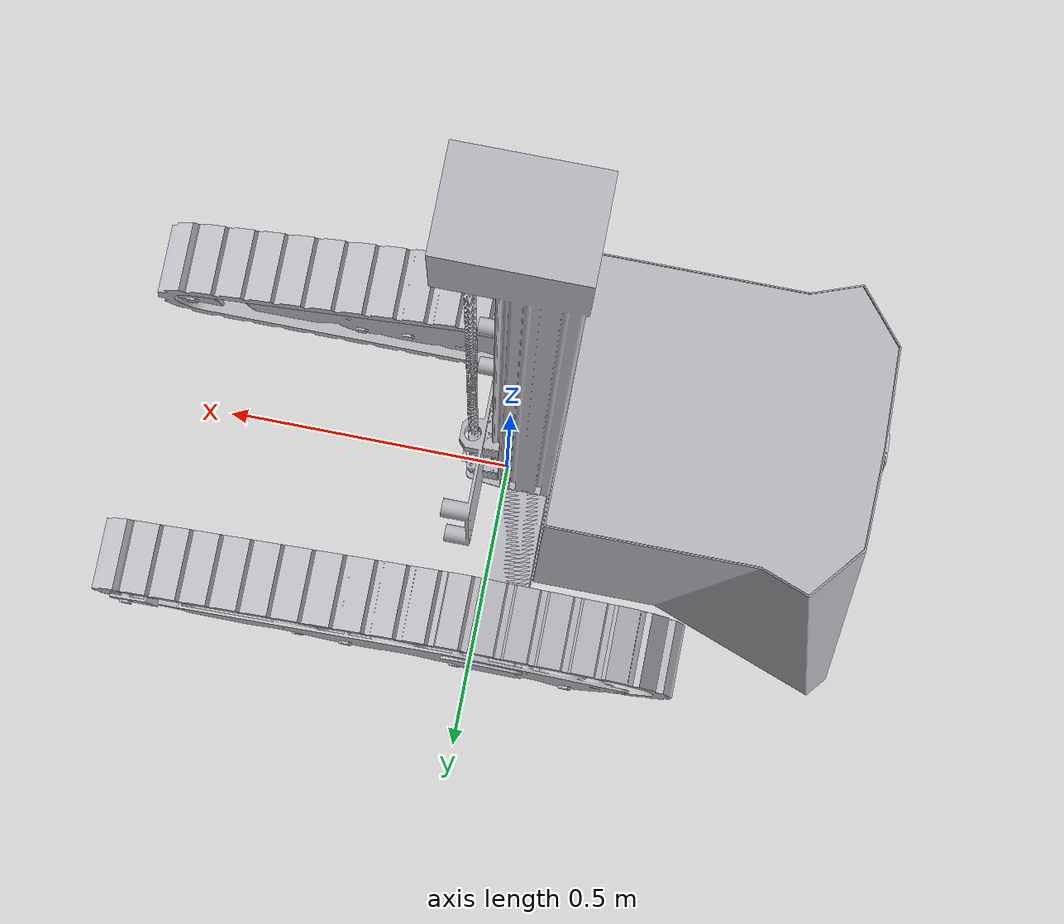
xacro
<?xml version="1.0" ?>
<robot name="mobile_robco" xmlns:xacro="http://www.ros.org/wiki/xacro" >
  <xacro:macro name="base" params="">
    <!-- Base Links -->
    <link name="base_link">
      <inertial>
        <origin xyz="-0.03896153432804354 0.005867631915463676 -0.010673279397023769" rpy="0 0 0"/>
        <mass value="0.29955790540385463"/>
        <inertia ixx="0.000104" iyy="8.5e-05" izz="0.000184" ixy="0.0" iyz="0.0" ixz="-0.0"/>
      </inertial>
      <visual>
        <origin xyz="0 0 0" rpy="0 0 0"/>
        <geometry>
          <mesh filename="package://mobile_robco_description/meshes/base/base_link.stl" scale="0.001 0.001 0.001"/>
        </geometry>
        <material name="silver"/>
      </visual>
      <collision>
        <origin xyz="0 0 0" rpy="0 0 0"/>
        <geometry>
          <mesh filename="package://mobile_robco_description/meshes/base/base_link.stl" scale="0.001 0.001 0.001"/>
        </geometry>
      </collision>
    </link>

    <link name="Komponente21_v1_1">
      <inertial>
        <origin xyz="0.8506922741874056 0.0236368074605828 0.2599444984707082" rpy="0 0 0"/>
        <mass value="7.457205844054386"/>
        <inertia ixx="0.13903" iyy="0.08284" izz="0.058701" ixy="5e-06" iyz="-0.0" ixz="-3e-06"/>
      </inertial>
      <visual>
        <origin xyz="0.812664 0.022536 -0.5244" rpy="0 0 0"/>
        <geometry>
          <mesh filename="package://mobile_robco_description/meshes/base/Komponente21_v1_1.stl" scale="0.001 0.001 0.001"/>
        </geometry>
        <material name="silver"/>
      </visual>
      <collision>
        <origin xyz="0.812664 0.022536 -0.5244" rpy="0 0 0"/>
        <geometry>
          <mesh filename="package://mobile_robco_description/meshes/base/Komponente21_v1_1.stl" scale="0.001 0.001 0.001"/>
        </geometry>
      </collision>
    </link>

    <link name="base1_1">
      <inertial>
        <origin xyz="0.9566914769760486 -3.233384710271179 -0.25954941172347595" rpy="0 0 0"/>
        <mass value="30.05835489201481"/>
        <inertia ixx="0.536547" iyy="2.250629" izz="2.586858" ixy="0.101195" iyz="-0.033579" ixz="0.196743"/>
      </inertial>
      <visual>
        <origin xyz="0.902805 -2.986735 -0.214327" rpy="0 0 0"/>
        <geometry>
          <mesh filename="package://mobile_robco_description/meshes/base/base1_1.stl" scale="0.001 0.001 0.001"/>
        </geometry>
        <material name="silver"/>
      </visual>
      <collision>
        <origin xyz="0.902805 -2.986735 -0.214327" rpy="0 0 0"/>
        <geometry>
          <mesh filename="package://mobile_robco_description/meshes/base/base1_1.stl" scale="0.001 0.001 0.001"/>
        </geometry>
      </collision>
    </link>

    <link name="base2_1">
      <inertial>
        <origin xyz="0.9515434769737495 0.9370499741022495 -0.19289541172296418" rpy="0 0 0"/>
        <mass value="30.058354892051064"/>
        <inertia ixx="0.536547" iyy="2.250629" izz="2.586858" ixy="-0.101195" iyz="0.033579" ixz="0.196743"/>
      </inertial>
      <visual>
        <origin xyz="0.897657 0.678665 -0.147673" rpy="0 0 0"/>
        <geometry>
          <mesh filename="package://mobile_robco_description/meshes/base/base2_1.stl" scale="0.001 0.001 0.001"/>
        </geometry>
        <material name="silver"/>
      </visual>
      <collision>
        <origin xyz="0.897657 0.678665 -0.147673" rpy="0 0 0"/>
        <geometry>
          <mesh filename="package://mobile_robco_description/meshes/base/base2_1.stl" scale="0.001 0.001 0.001"/>
        </geometry>
      </collision>
    </link>

    <link name="track1_2">
      <inertial>
        <origin xyz="0.3784911035024571 0.0001407824381797762 -0.036981829496462386" rpy="0 0 0"/>
        <mass value="64.38115755506752"/>
        <inertia ixx="0.932371" iyy="7.44887" izz="6.697061" ixy="-4e-06" iyz="3e-06" ixz="0.581153"/>
      </inertial>
      <visual>
        <origin xyz="0.224661 0.271632 0.004433" rpy="0 0 0"/>
        <geometry>
          <mesh filename="package://mobile_robco_description/meshes/base/track1_2.stl" scale="0.001 0.001 0.001"/>
        </geometry>
        <material name="silver"/>
      </visual>
      <collision>
        <origin xyz="0.224661 0.271632 0.004433" rpy="0 0 0"/>
        <geometry>
          <mesh filename="package://mobile_robco_description/meshes/base/track1_2.stl" scale="0.001 0.001 0.001"/>
        </geometry>
      </collision>
    </link>

    <link name="track1_1">
      <inertial>
        <origin xyz="0.3784911035024567 0.0001407824381787215 -0.03698182949646118" rpy="0 0 0"/>
        <mass value="64.38115755506752"/>
        <inertia ixx="0.932371" iyy="7.44887" izz="6.697061" ixy="-4e-06" iyz="3e-06" ixz="0.581153"/>
      </inertial>
      <visual>
        <origin xyz="0.224661 -0.283368 0.004433" rpy="0 0 0"/>
        <geometry>
          <mesh filename="package://mobile_robco_description/meshes/base/track1_1.stl" scale="0.001 0.001 0.001"/>
        </geometry>
        <material name="silver"/>
      </visual>
      <collision>
        <origin xyz="0.224661 -0.283368 0.004433" rpy="0 0 0"/>
        <geometry>
          <mesh filename="package://mobile_robco_description/meshes/base/track1_1.stl" scale="0.001 0.001 0.001"/>
        </geometry>
      </collision>
    </link>

    <link name="case_1">
      <inertial>
        <origin xyz="0.5981603934625015 -0.27455392719381355 0.27391391694938416" rpy="0 0 0"/>
        <mass value="21.33788447267496"/>
        <inertia ixx="1.560533" iyy="1.705148" izz="1.529387" ixy="-0.000105" iyz="-5e-05" ixz="-0.077952"/>
      </inertial>
      <visual>
        <origin xyz="0.937657 -0.2754 -0.164327" rpy="0 0 0"/>
        <geometry>
          <mesh filename="package://mobile_robco_description/meshes/base/case_1.stl" scale="0.001 0.001 0.001"/>
        </geometry>
        <material name="silver"/>
      </visual>
      <collision>
        <origin xyz="0.937657 -0.2754 -0.164327" rpy="0 0 0"/>
        <geometry>
          <mesh filename="package://mobile_robco_description/meshes/base/case_1.stl" scale="0.001 0.001 0.001"/>
        </geometry>
      </collision>
    </link>

    <link name="Komponente21_1">
      <inertial>
        <origin xyz="-0.281767606460638 -3.6808453582673744e-07 0.0024997206029748753" rpy="0 0 0"/>
        <mass value="9.491285426405621"/>
        <inertia ixx="0.181579" iyy="0.218291" izz="0.39983" ixy="0.0" iyz="0.0" ixz="-0.0"/>
      </inertial>
      <visual>
        <origin xyz="0.084996 -0.000868 -0.099327" rpy="0 0 0"/>
        <geometry>
          <mesh filename="package://mobile_robco_description/meshes/base/Komponente21_1.stl" scale="0.001 0.001 0.001"/>
        </geometry>
        <material name="silver"/>
      </visual>
      <collision>
        <origin xyz="0.084996 -0.000868 -0.099327" rpy="0 0 0"/>
        <geometry>
          <mesh filename="package://mobile_robco_description/meshes/base/Komponente21_1.stl" scale="0.001 0.001 0.001"/>
        </geometry>
      </collision>
    </link>

    <link name="Komponente22_1">
      <inertial>
        <origin xyz="-0.22332399262019292 -3.680845353294139e-07 -0.0010002793970341761" rpy="0 0 0"/>
        <mass value="2.8182596840169714"/>
        <inertia ixx="0.037978" iyy="0.046329" izz="0.084305" ixy="0.0" iyz="0.0" ixz="-0.0"/>
      </inertial>
      <visual>
        <origin xyz="0.084996 -0.000868 -0.799327" rpy="0 0 0"/>
        <geometry>
          <mesh filename="package://mobile_robco_description/meshes/base/Komponente22_1.stl" scale="0.001 0.001 0.001"/>
        </geometry>
        <material name="silver"/>
      </visual>
      <collision>
        <origin xyz="0.084996 -0.000868 -0.799327" rpy="0 0 0"/>
        <geometry>
          <mesh filename="package://mobile_robco_description/meshes/base/Komponente22_1.stl" scale="0.001 0.001 0.001"/>
        </geometry>
      </collision>
    </link>

    <link name="Komponente17_v1_1">
      <inertial>
        <origin xyz="0.5102378890855793 0.5891907409325978 0.7543644472014741" rpy="0 0 0"/>
        <mass value="38.85023583912367"/>
        <inertia ixx="8.389143" iyy="8.421741" izz="0.097879" ixy="-0.000112" iyz="-8.3e-05" ixz="-0.001163"/>
      </inertial>
      <visual>
        <origin xyz="0.532323 0.588265 -0.063802" rpy="0 0 0"/>
        <geometry>
          <mesh filename="package://mobile_robco_description/meshes/base/Komponente17_v1_1.stl" scale="0.001 0.001 0.001"/>
        </geometry>
        <material name="silver"/>
      </visual>
      <collision>
        <origin xyz="0.532323 0.588265 -0.063802" rpy="0 0 0"/>
        <geometry>
          <mesh filename="package://mobile_robco_description/meshes/base/Komponente17_v1_1.stl" scale="0.001 0.001 0.001"/>
        </geometry>
      </collision>
    </link>

    <!-- Base Joints -->

    <joint name="Slider_18" type="prismatic">
      <origin xyz="-0.280341 0.565729 -0.056902" rpy="0 0 0"/>
      <parent link="Komponente17_v1_1"/>
      <child link="Komponente21_v1_1"/>
      <axis xyz="0.0 0.0 1.0"/> <!-- Adjust the direction as needed -->
      <limit lower="0.0" upper="1.0" effort="10000" velocity="0.5"/>
    </joint>

    <joint name="Rigid_30" type="fixed">
      <origin xyz="-0.902805 2.986735 0.214327" rpy="0 0 0"/>
      <parent link="base_link"/>
      <child link="base1_1"/>
    </joint>

    <joint name="Rigid_31" type="fixed">
      <origin xyz="0.005148 -3.6654 -0.066654" rpy="0 0 0"/>
      <parent link="base1_1"/>
      <child link="base2_1"/>
    </joint>

    <joint name="Rigid_32" type="fixed">
      <origin xyz="0.678144 -3.258367 -0.21876" rpy="0 0 0"/>
      <parent link="base1_1"/>
      <child link="track1_2"/>
    </joint>

    <joint name="Rigid_33" type="fixed">
      <origin xyz="0.672996 0.962033 -0.152106" rpy="0 0 0"/>
      <parent link="base2_1"/>
      <child link="track1_1"/>
    </joint>

    <joint name="Rigid_34" type="fixed">
      <origin xyz="-0.04 0.954065 0.016654" rpy="0 0 0"/>
      <parent link="base2_1"/>
      <child link="case_1"/>
    </joint>

    <joint name="Rigid_35" type="fixed">
      <origin xyz="0.852661 -0.274532 -0.065" rpy="0 0 0"/>
      <parent link="case_1"/>
      <child link="Komponente21_1"/>
    </joint>

    <joint name="Rigid_36" type="fixed">
      <origin xyz="0.852661 -0.274532 0.635" rpy="0 0 0"/>
      <parent link="case_1"/>
      <child link="Komponente22_1"/>
    </joint>

    <joint name="Rigid_37" type="fixed">
      <origin xyz="0.405334 -0.863665 -0.100525" rpy="0 0 0"/>
      <parent link="case_1"/>
      <child link="Komponente17_v1_1"/>
    </joint>

  </xacro:macro>

  <!-- Invoke the Base Macro -->
  <xacro:base/>
</robot>
